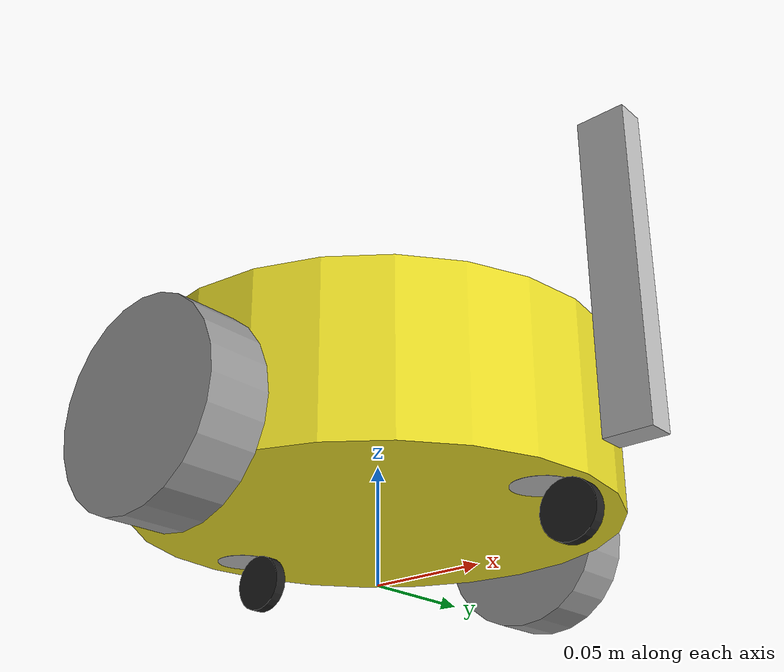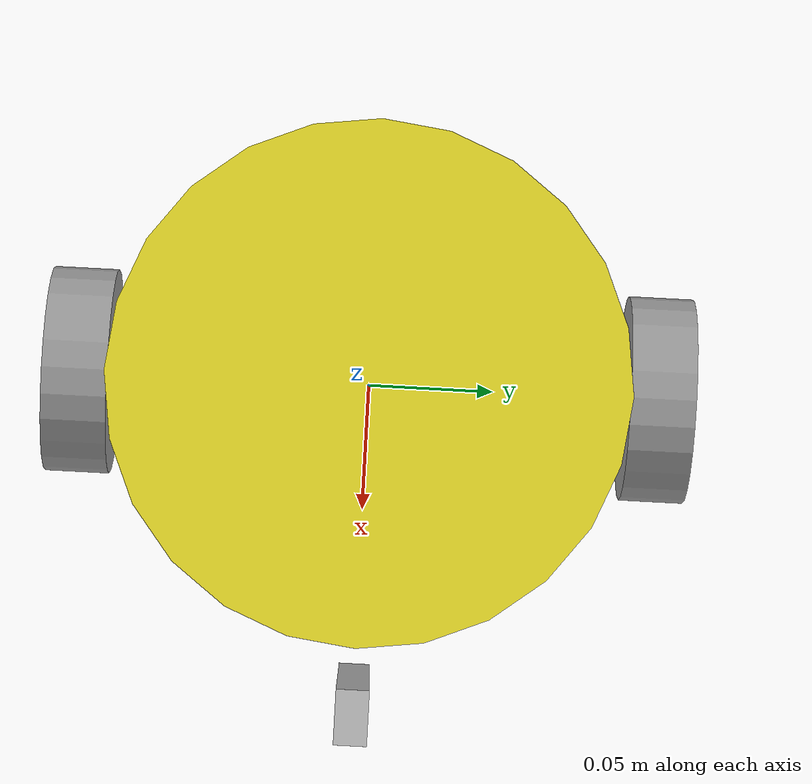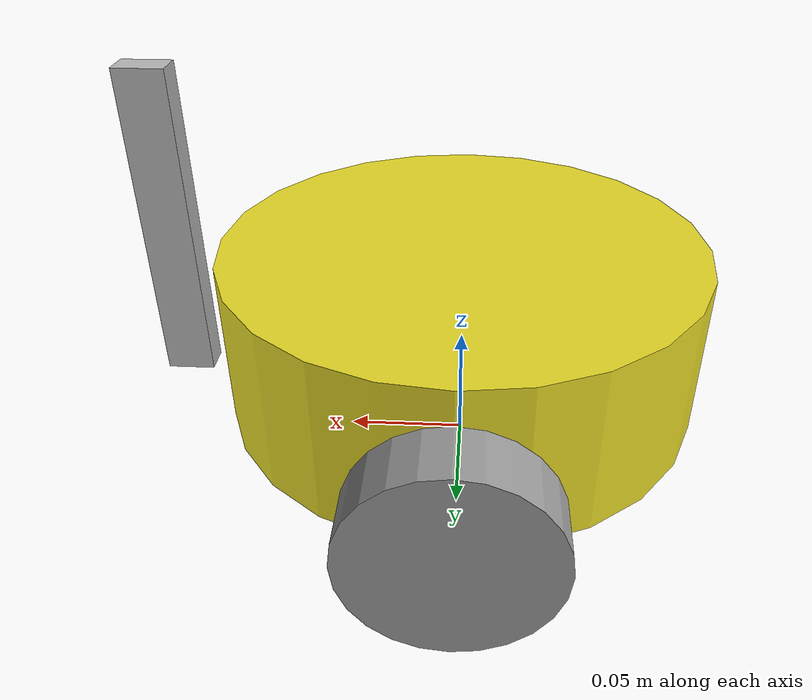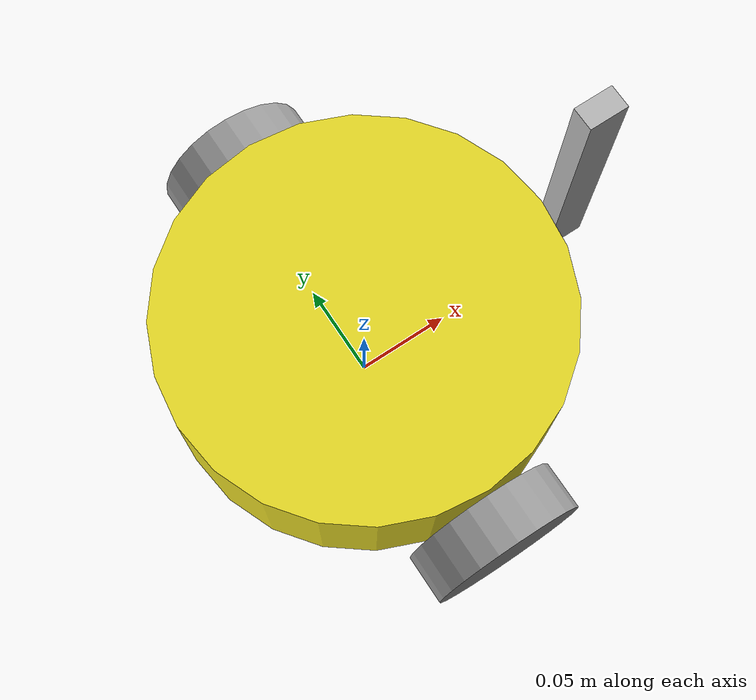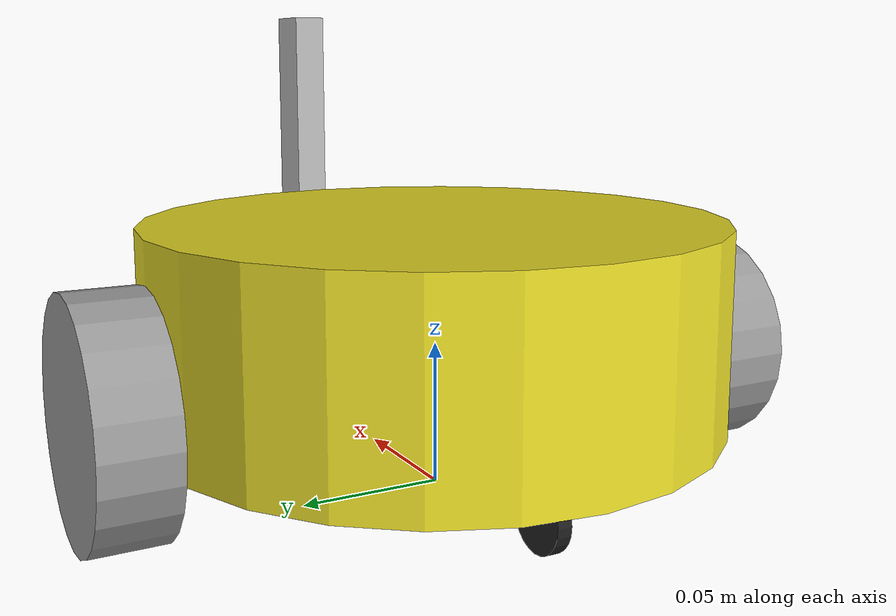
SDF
<sdf version='1.7'>
  <model name='jobot'>
    <link name='base_footprint'>
      <inertial>
        <pose>0 0 0.059 0 -0 0</pose>
        <mass>1</mass>
        <inertia>
          <ixx>0.00290833</ixx>
          <ixy>0</ixy>
          <ixz>0</ixz>
          <iyy>0.00290833</iyy>
          <iyz>0</iyz>
          <izz>0.005</izz>
        </inertia>
      </inertial>
      <collision name='base_footprint_fixed_joint_lump__base_link_collision'>
        <pose>0 0 0.059 0 -0 0</pose>
        <geometry>
          <cylinder>
            <length>0.07</length>
            <radius>0.1</radius>
          </cylinder>
        </geometry>
        <surface>
          <contact>
            <ode/>
          </contact>
          <friction>
            <ode/>
          </friction>
        </surface>
      </collision>
      <collision name='base_footprint_fixed_joint_lump__camera_link_collision_1'>
        <pose>0.12 0 0.099 0 -0 0</pose>
        <geometry>
          <box>
            <size>0.012 0.132 0.02</size>
          </box>
        </geometry>
      </collision>
      <visual name='base_footprint_fixed_joint_lump__base_link_visual'>
        <pose>0 0 0.059 0 -0 0</pose>
        <geometry>
          <cylinder>
            <length>0.07</length>
            <radius>0.1</radius>
          </cylinder>
        </geometry>
        <material>
          <script>
            <name>Gazebo/Yellow</name>
            <uri>file://media/materials/scripts/gazebo.material</uri>
          </script>
        </material>
      </visual>
      <visual name='base_footprint_fixed_joint_lump__camera_link_visual_1'>
        <pose>0.12 0 0.099 1.57 -0 1.57</pose>
        <geometry>
          <box>
            <size>0.012 0.132 0.02</size>
          </box>
        </geometry>
      </visual>
      <sensor name='camera' type='depth'>
        <always_on>1</always_on>
        <visualize>1</visualize>
        <update_rate>20</update_rate>
        <camera name='intel_realsense_r200'>
          <horizontal_fov>1.0472</horizontal_fov>
          <image>
            <format>R8G8B8</format>
            <width>640</width>
            <height>480</height>
          </image>
          <clip>
            <near>0.02</near>
            <far>300</far>
          </clip>
          <noise>
            <type>gaussian</type>
            <mean>0</mean>
            <stddev>0.007</stddev>
          </noise>
        </camera>
        <plugin name='camera_controller' filename='libgazebo_ros_camera.so'>
          <frameName>camera_rgb_optical_frame</frameName>
        </plugin>
        <pose>0.125 0.018 0.112 -1.5708 -0 -1.5708</pose>
        <frameName>camera_rgb_optical_frame</frameName>
      </sensor>
    </link>
    <joint name='back_top_caster_joint' type='revolute'>
      <pose relative_to='base_footprint'>-0.08 0 0.024 0 -0 0</pose>
      <parent>base_footprint</parent>
      <child>back_top_link</child>
      <axis>
        <xyz>0 0 1</xyz>
        <limit>
          <lower>-1e+16</lower>
          <upper>1e+16</upper>
        </limit>
        <dynamics>
          <spring_reference>0</spring_reference>
          <spring_stiffness>0</spring_stiffness>
        </dynamics>
      </axis>
    </joint>
    <link name='back_top_link'>
      <pose relative_to='back_top_caster_joint'>0 0 0 0 -0 0</pose>
      <inertial>
        <pose>0 0 0 0 -0 0</pose>
        <mass>0.01</mass>
        <inertia>
          <ixx>3.60052e-07</ixx>
          <ixy>0</ixy>
          <ixz>0</ixz>
          <iyy>3.60052e-07</iyy>
          <iyz>0</iyz>
          <izz>7.2e-07</izz>
        </inertia>
      </inertial>
      <collision name='back_top_link_collision'>
        <pose>0 0 0 0 -0 0</pose>
        <geometry>
          <cylinder>
            <length>0.00025</length>
            <radius>0.012</radius>
          </cylinder>
        </geometry>
      </collision>
      <visual name='back_top_link_visual'>
        <pose>0 0 0 0 -0 0</pose>
        <geometry>
          <cylinder>
            <length>0.00025</length>
            <radius>0.012</radius>
          </cylinder>
        </geometry>
      </visual>
    </link>
    <joint name='back_caster_joint' type='revolute'>
      <pose relative_to='back_top_link'>0.012 0 -0.012 0 -0 0</pose>
      <parent>back_top_link</parent>
      <child>back_caster_link</child>
      <axis>
        <xyz>0 1 0</xyz>
        <limit>
          <lower>-1e+16</lower>
          <upper>1e+16</upper>
        </limit>
        <dynamics>
          <spring_reference>0</spring_reference>
          <spring_stiffness>0</spring_stiffness>
        </dynamics>
      </axis>
    </joint>
    <link name='back_caster_link'>
      <pose relative_to='back_caster_joint'>0 0 0 0 -0 0</pose>
      <inertial>
        <pose>0 0 0 0 -0 0</pose>
        <mass>0.2</mass>
        <inertia>
          <ixx>7.61667e-06</ixx>
          <ixy>0</ixy>
          <ixz>0</ixz>
          <iyy>7.61667e-06</iyy>
          <iyz>0</iyz>
          <izz>1.44e-05</izz>
        </inertia>
      </inertial>
      <collision name='back_caster_link_collision'>
        <pose>0 0 0 1.5708 -0 0</pose>
        <geometry>
          <cylinder>
            <length>0.005</length>
            <radius>0.012</radius>
          </cylinder>
        </geometry>
        <surface>
          <contact>
            <ode/>
          </contact>
          <friction>
            <ode/>
          </friction>
        </surface>
      </collision>
      <visual name='back_caster_link_visual'>
        <pose>0 0 0 1.5708 -0 0</pose>
        <geometry>
          <cylinder>
            <length>0.005</length>
            <radius>0.012</radius>
          </cylinder>
        </geometry>
        <material>
          <script>
            <name>Gazebo/Black</name>
            <uri>file://media/materials/scripts/gazebo.material</uri>
          </script>
        </material>
      </visual>
    </link>
    <joint name='front_top_caster_joint' type='revolute'>
      <pose relative_to='base_footprint'>0.08 0 0.024 0 -0 0</pose>
      <parent>base_footprint</parent>
      <child>front_top_link</child>
      <axis>
        <xyz>0 0 1</xyz>
        <limit>
          <lower>-1e+16</lower>
          <upper>1e+16</upper>
        </limit>
        <dynamics>
          <spring_reference>0</spring_reference>
          <spring_stiffness>0</spring_stiffness>
        </dynamics>
      </axis>
    </joint>
    <link name='front_top_link'>
      <pose relative_to='front_top_caster_joint'>0 0 0 0 -0 0</pose>
      <inertial>
        <pose>0 0 0 0 -0 0</pose>
        <mass>0.01</mass>
        <inertia>
          <ixx>3.60052e-07</ixx>
          <ixy>0</ixy>
          <ixz>0</ixz>
          <iyy>3.60052e-07</iyy>
          <iyz>0</iyz>
          <izz>7.2e-07</izz>
        </inertia>
      </inertial>
      <collision name='front_top_link_collision'>
        <pose>0 0 0 0 -0 0</pose>
        <geometry>
          <cylinder>
            <length>0.00025</length>
            <radius>0.012</radius>
          </cylinder>
        </geometry>
      </collision>
      <visual name='front_top_link_visual'>
        <pose>0 0 0 0 -0 0</pose>
        <geometry>
          <cylinder>
            <length>0.00025</length>
            <radius>0.012</radius>
          </cylinder>
        </geometry>
      </visual>
    </link>
    <joint name='front_caster_joint' type='revolute'>
      <pose relative_to='front_top_link'>0.012 0 -0.012 0 -0 0</pose>
      <parent>front_top_link</parent>
      <child>front_caster_link</child>
      <axis>
        <xyz>0 1 0</xyz>
        <limit>
          <lower>-1e+16</lower>
          <upper>1e+16</upper>
        </limit>
        <dynamics>
          <spring_reference>0</spring_reference>
          <spring_stiffness>0</spring_stiffness>
        </dynamics>
      </axis>
    </joint>
    <link name='front_caster_link'>
      <pose relative_to='front_caster_joint'>0 0 0 0 -0 0</pose>
      <inertial>
        <pose>0 0 0 0 -0 0</pose>
        <mass>0.2</mass>
        <inertia>
          <ixx>7.61667e-06</ixx>
          <ixy>0</ixy>
          <ixz>0</ixz>
          <iyy>7.61667e-06</iyy>
          <iyz>0</iyz>
          <izz>1.44e-05</izz>
        </inertia>
      </inertial>
      <collision name='front_caster_link_collision'>
        <pose>0 0 0 1.5708 -0 0</pose>
        <geometry>
          <cylinder>
            <length>0.005</length>
            <radius>0.012</radius>
          </cylinder>
        </geometry>
        <surface>
          <contact>
            <ode/>
          </contact>
          <friction>
            <ode/>
          </friction>
        </surface>
      </collision>
      <visual name='front_caster_link_visual'>
        <pose>0 0 0 1.5708 -0 0</pose>
        <geometry>
          <cylinder>
            <length>0.005</length>
            <radius>0.012</radius>
          </cylinder>
        </geometry>
        <material>
          <script>
            <name>Gazebo/Black</name>
            <uri>file://media/materials/scripts/gazebo.material</uri>
          </script>
        </material>
      </visual>
    </link>
    <joint name='left_wheel_joint' type='revolute'>
      <pose relative_to='base_footprint'>0 0.1125 0.04 0 -0 0</pose>
      <parent>base_footprint</parent>
      <child>left_wheel_link</child>
      <axis>
        <xyz>0 1 0</xyz>
        <limit>
          <lower>-1e+16</lower>
          <upper>1e+16</upper>
        </limit>
        <dynamics>
          <spring_reference>0</spring_reference>
          <spring_stiffness>0</spring_stiffness>
        </dynamics>
      </axis>
    </joint>
    <link name='left_wheel_link'>
      <pose relative_to='left_wheel_joint'>0 0 0 0 -0 0</pose>
      <inertial>
        <pose>0 0 0 0 -0 0</pose>
        <mass>0.2</mass>
        <inertia>
          <ixx>9.04167e-05</ixx>
          <ixy>0</ixy>
          <ixz>0</ixz>
          <iyy>9.04167e-05</iyy>
          <iyz>0</iyz>
          <izz>0.00016</izz>
        </inertia>
      </inertial>
      <collision name='left_wheel_link_collision'>
        <pose>0 0 0 1.5708 -0 0</pose>
        <geometry>
          <cylinder>
            <length>0.025</length>
            <radius>0.04</radius>
          </cylinder>
        </geometry>
        <surface>
          <contact>
            <ode/>
          </contact>
          <friction>
            <ode>
              <mu>100000</mu>
              <mu2>100000</mu2>
            </ode>
          </friction>
        </surface>
      </collision>
      <visual name='left_wheel_link_visual'>
        <pose>0 0 0 1.5708 -0 0</pose>
        <geometry>
          <cylinder>
            <length>0.025</length>
            <radius>0.04</radius>
          </cylinder>
        </geometry>
        <material>
          <script>
            <name>Gazebo/Gray</name>
            <uri>file://media/materials/scripts/gazebo.material</uri>
          </script>
        </material>
      </visual>
    </link>
    <joint name='right_wheel_joint' type='revolute'>
      <pose relative_to='base_footprint'>0 -0.1125 0.04 0 -0 0</pose>
      <parent>base_footprint</parent>
      <child>right_wheel_link</child>
      <axis>
        <xyz>0 1 0</xyz>
        <limit>
          <lower>-1e+16</lower>
          <upper>1e+16</upper>
        </limit>
        <dynamics>
          <spring_reference>0</spring_reference>
          <spring_stiffness>0</spring_stiffness>
        </dynamics>
      </axis>
    </joint>
    <link name='right_wheel_link'>
      <pose relative_to='right_wheel_joint'>0 0 0 0 -0 0</pose>
      <inertial>
        <pose>0 0 0 0 -0 0</pose>
        <mass>0.2</mass>
        <inertia>
          <ixx>9.04167e-05</ixx>
          <ixy>0</ixy>
          <ixz>0</ixz>
          <iyy>9.04167e-05</iyy>
          <iyz>0</iyz>
          <izz>0.00016</izz>
        </inertia>
      </inertial>
      <collision name='right_wheel_link_collision'>
        <pose>0 0 0 1.5708 -0 0</pose>
        <geometry>
          <cylinder>
            <length>0.025</length>
            <radius>0.04</radius>
          </cylinder>
        </geometry>
        <surface>
          <contact>
            <ode/>
          </contact>
          <friction>
            <ode>
              <mu>100000</mu>
              <mu2>100000</mu2>
            </ode>
          </friction>
        </surface>
      </collision>
      <visual name='right_wheel_link_visual'>
        <pose>0 0 0 1.5708 -0 0</pose>
        <geometry>
          <cylinder>
            <length>0.025</length>
            <radius>0.04</radius>
          </cylinder>
        </geometry>
        <material>
          <script>
            <name>Gazebo/Gray</name>
            <uri>file://media/materials/scripts/gazebo.material</uri>
          </script>
        </material>
      </visual>
    </link>
    <static>0</static>
    <plugin name='differential_drive_controller' filename='libgazebo_ros_diff_drive.so'>
      <update_rate>30</update_rate>
      <left_joint>left_wheel_joint</left_joint>
      <right_joint>right_wheel_joint</right_joint>
      <wheel_separation>0.225</wheel_separation>
      <wheel_diameter>0.08</wheel_diameter>
      <max_wheel_torque>10</max_wheel_torque>
      <max_wheel_acceleration>1.0</max_wheel_acceleration>
      <command_topic>cmd_vel</command_topic>
      <publish_odom>1</publish_odom>
      <publish_odom_tf>1</publish_odom_tf>
      <publish_wheel_tf>1</publish_wheel_tf>
      <odometry_topic>odom</odometry_topic>
      <odometry_frame>odom</odometry_frame>
      <robot_base_frame>base_footprint</robot_base_frame>
      <odometry_source>1</odometry_source>
    </plugin>
  </model>
</sdf>
